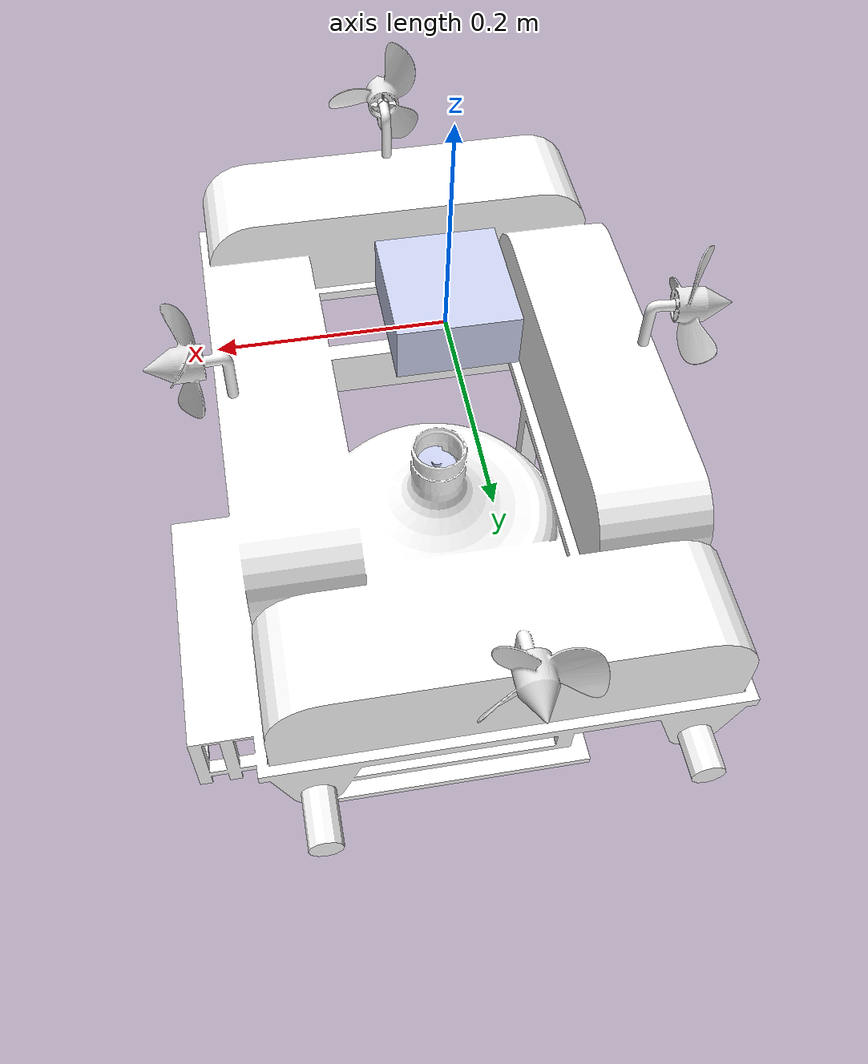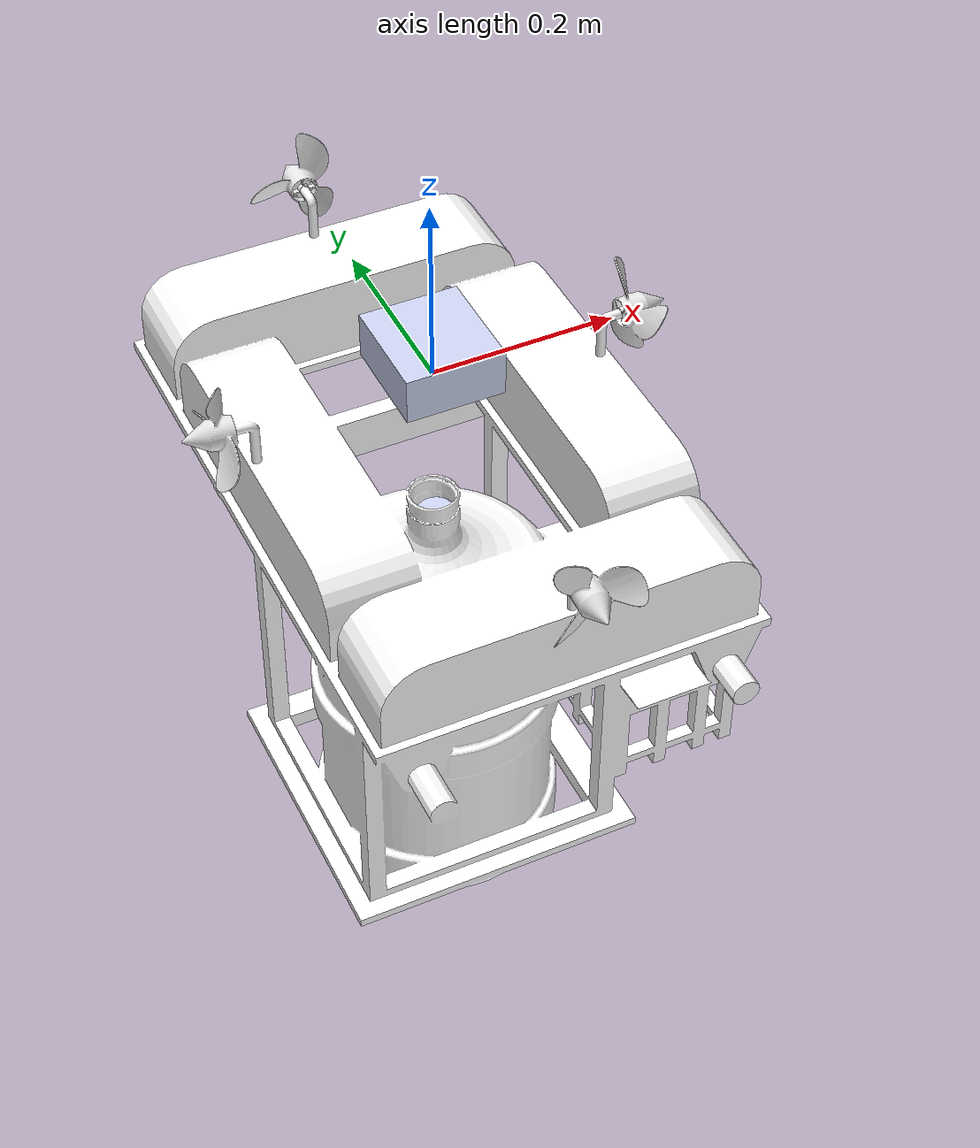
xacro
<?xml version="1.0" encoding="utf-8"?>
<robot  name="feeder1"  xmlns:xacro="http://ros.org/wiki/xacro">
<xacro:include filename="$(find feeder1)/gazebo/feeder1.gazebo"/>
  <link
    name="base_link">
    <inertial>
      <origin
        xyz="0 -2.7756E-17 0.025"
        rpy="0 0 0" />
      <mass
        value="0.60226" />
      <inertia
        ixx="0.00077609"
        ixy="3.4547E-20"
        ixz="6.1199E-21"
        iyy="0.00068716"
        iyz="-1.4067E-19"
        izz="0.0012123" />
    </inertial>
    <visual>
      <origin
        xyz="0 0 0"
        rpy="0 0 0" />
      <geometry>
        <mesh
          filename="package://feeder1/meshes/base_link.STL" />
      </geometry>
      <material
        name="">
        <color
          rgba="0.79216 0.81961 0.93333 1" />
      </material>
    </visual>
    <collision>
      <origin
        xyz="0 0 0"
        rpy="0 0 0" />
      <geometry>
        <mesh
          filename="package://feeder1/meshes/base_link.STL" />
      </geometry>
    </collision>
  </link>
  <link
    name="fixed_link">
    <inertial>
      <origin
        xyz="0.014638 0.0065769 -0.19406"
        rpy="0 0 0" />
      <mass
        value="32.724" />
      <inertia
        ixx="0.46204"
        ixy="6.1213E-06"
        ixz="0.00021276"
        iyy="0.33413"
        iyz="-2.3422E-05"
        izz="0.60985" />
    </inertial>
    <visual>
      <origin
        xyz="0 0 0"
        rpy="0 0 0" />
      <geometry>
        <mesh
          filename="package://feeder1/meshes/fixed_link.STL" />
      </geometry>
      <material
        name="">
        <color
          rgba="1 1 1 1" />
      </material>
    </visual>
    <collision>
      <origin
        xyz="0 0 0"
        rpy="0 0 0" />
      <geometry>
        <mesh
          filename="package://feeder1/meshes/fixed_link.STL" />
      </geometry>
    </collision>
  </link>
  <joint
    name="fixed_joint"
    type="fixed">
    <origin
      xyz="0 0 0"
      rpy="0 0 0" />
    <parent
      link="base_link" />
    <child
      link="fixed_link" />
    <axis
      xyz="0 0 0" />
  </joint>
  <link
    name="left_link">
    <inertial>
      <origin
        xyz="-0.0011715 -0.69287 -6.5265E-07"
        rpy="0 0 0" />
      <mass
        value="0.20036" />
      <inertia
        ixx="6.5904E-05"
        ixy="-7.0923E-11"
        ixz="-2.296E-09"
        iyy="8.7668E-05"
        iyz="-1.2712E-09"
        izz="6.5911E-05" />
    </inertial>
    <visual>
      <origin
        xyz="0 0 0"
        rpy="0 0 0" />
      <geometry>
        <mesh
          filename="package://feeder1/meshes/left_link.STL" />
      </geometry>
      <material
        name="">
        <color
          rgba="0.89804 0.89804 0.89804 1" />
      </material>
    </visual>
    <collision>
      <origin
        xyz="0 0 0"
        rpy="0 0 0" />
      <geometry>
        <mesh
          filename="package://feeder1/meshes/left_link.STL" />
      </geometry>
    </collision>
  </link>
  <joint
    name="left_joint"
    type="continuous">
    <origin
      xyz="0.0018491 -0.33687 -0.004102"
      rpy="0 0 3.1416" />
    <parent
      link="base_link" />
    <child
      link="left_link" />
    <axis
      xyz="0 -1 0" />
  </joint>
  <link
    name="right_link">
    <inertial>
      <origin
        xyz="0.00014915 0.0043355 -7.3921E-07"
        rpy="0 0 0" />
      <mass
        value="0.20036" />
      <inertia
        ixx="6.593E-05"
        ixy="7.4883E-07"
        ixz="3.2323E-09"
        iyy="8.7642E-05"
        iyz="1.1389E-09"
        izz="6.591E-05" />
    </inertial>
    <visual>
      <origin
        xyz="0 0 0"
        rpy="0 0 0" />
      <geometry>
        <mesh
          filename="package://feeder1/meshes/right_link.STL" />
      </geometry>
      <material
        name="">
        <color
          rgba="0.89804 0.89804 0.89804 1" />
      </material>
    </visual>
    <collision>
      <origin
        xyz="0 0 0"
        rpy="0 0 0" />
      <geometry>
        <mesh
          filename="package://feeder1/meshes/right_link.STL" />
      </geometry>
    </collision>
  </link>
  <joint
    name="right_joint"
    type="continuous">
    <origin
      xyz="0.0018490628561556 -0.336867042326673 -0.00410200897064866"
      rpy="0 0 3.14159265358979" />
    <parent
      link="base_link" />
    <child
      link="right_link" />
    <axis
      xyz="0.0344354798659534 0.999406922993033 0" />
  </joint>
  <link
    name="front_link">
    <inertial>
      <origin
        xyz="-0.45221 0.0019632 8.3911E-08"
        rpy="0 0 0" />
      <mass
        value="0.20036" />
      <inertia
        ixx="8.7644E-05"
        ixy="7.7103E-07"
        ixz="4.1923E-10"
        iyy="6.5934E-05"
        iyz="-7.1036E-10"
        izz="6.5912E-05" />
    </inertial>
    <visual>
      <origin
        xyz="0 0 0"
        rpy="0 0 0" />
      <geometry>
        <mesh
          filename="package://feeder1/meshes/front_link.STL" />
      </geometry>
      <material
        name="">
        <color
          rgba="0.89804 0.89804 0.89804 1" />
      </material>
    </visual>
    <collision>
      <origin
        xyz="0 0 0"
        rpy="0 0 0" />
      <geometry>
        <mesh
          filename="package://feeder1/meshes/front_link.STL" />
      </geometry>
    </collision>
  </link>
  <joint
    name="front_joint"
    type="continuous">
    <origin
      xyz="-0.22084 0.010463 -0.004102"
      rpy="0 0 3.1416" />
    <parent
      link="base_link" />
    <child
      link="front_link" />
    <axis
      xyz="-0.99969 0.025066 0" />
  </joint>
  <link
    name="back_Link">
    <inertial>
      <origin
        xyz="0.0043174 -0.0004229 2.0114E-07"
        rpy="0 0 0" />
      <mass
        value="0.20036" />
      <inertia
        ixx="8.746E-05"
        ixy="-2.1157E-06"
        ixz="4.3699E-10"
        iyy="6.6118E-05"
        iyz="2.9577E-09"
        izz="6.5905E-05" />
    </inertial>
    <visual>
      <origin
        xyz="0 0 0"
        rpy="0 0 0" />
      <geometry>
        <mesh
          filename="package://feeder1/meshes/back_Link.STL" />
      </geometry>
      <material
        name="">
        <color
          rgba="0.89804 0.89804 0.89804 1" />
      </material>
    </visual>
    <collision>
      <origin
        xyz="0 0 0"
        rpy="0 0 0" />
      <geometry>
        <mesh
          filename="package://feeder1/meshes/back_Link.STL" />
      </geometry>
    </collision>
  </link>
  <joint
    name="back_joint"
    type="continuous">
    <origin
      xyz="-0.22084 0.010463 -0.004102"
      rpy="0 0 3.1416" />
    <parent
      link="base_link" />
    <child
      link="back_Link" />
    <axis
      xyz="0.99522 -0.097653 0" />
  </joint>
  <link
    name="screw_Link">
    <inertial>
      <origin
        xyz="-0.0015611 -0.00022615 -0.16409"
        rpy="0 0 0" />
      <mass
        value="1.2315" />
      <inertia
        ixx="0.017721"
        ixy="-2.3472E-05"
        ixz="0.00021038"
        iyy="0.017666"
        iyz="-8.4086E-05"
        izz="0.006453" />
    </inertial>
    <visual>
      <origin
        xyz="0 0 0"
        rpy="0 0 0" />
      <geometry>
        <mesh
          filename="package://feeder1/meshes/screw_Link.STL" />
      </geometry>
      <material
        name="">
        <color
          rgba="0.79216 0.81961 0.93333 1" />
      </material>
    </visual>
    <collision>
      <origin
        xyz="0 0 0"
        rpy="0 0 0" />
      <geometry>
        <mesh
          filename="package://feeder1/meshes/screw_Link.STL" />
      </geometry>
    </collision>
  </link>
  <joint
    name="screw_jont"
    type="continuous">
    <origin
      xyz="0.0010208 0.0051405 -0.61232"
      rpy="3.1416 0 3.1416" />
    <parent
      link="base_link" />
    <child
      link="screw_Link" />
    <axis
      xyz="0 0 -1" />
  </joint>
</robot>
